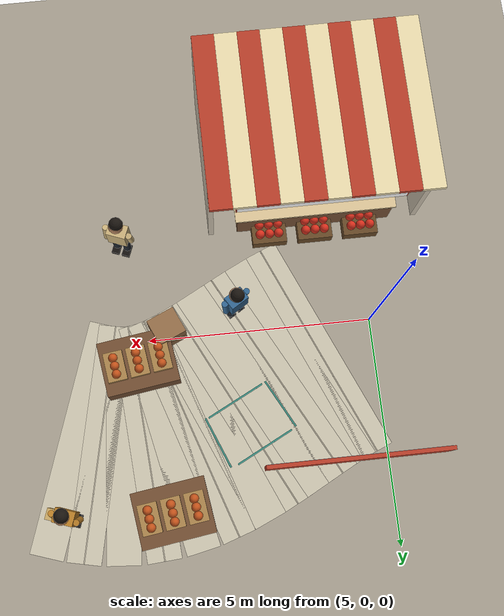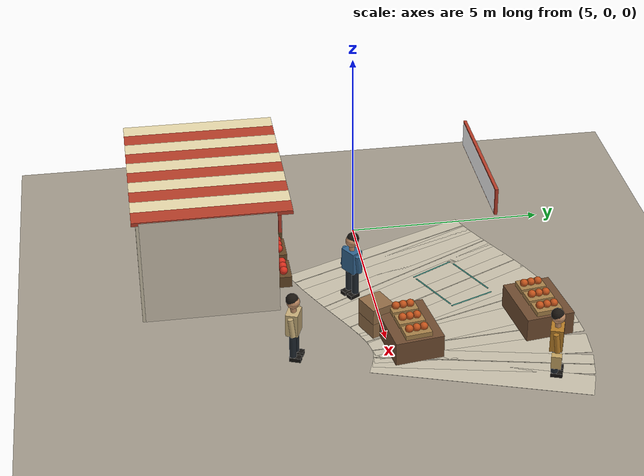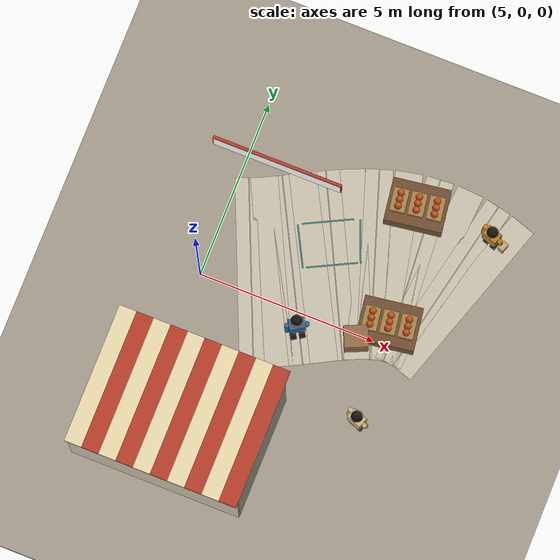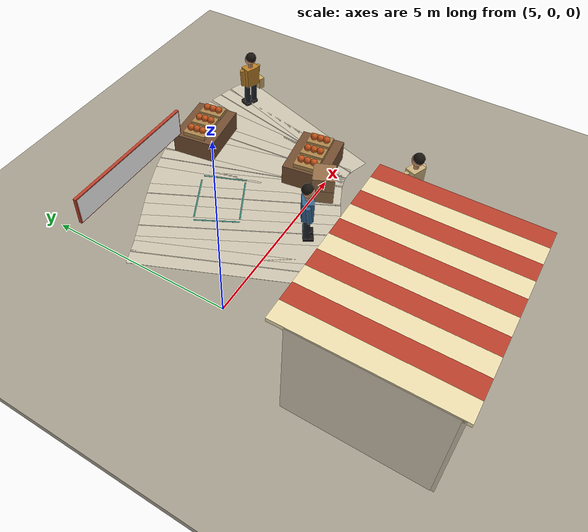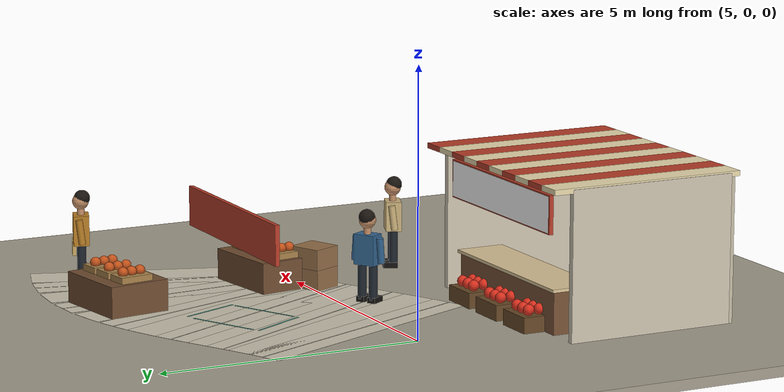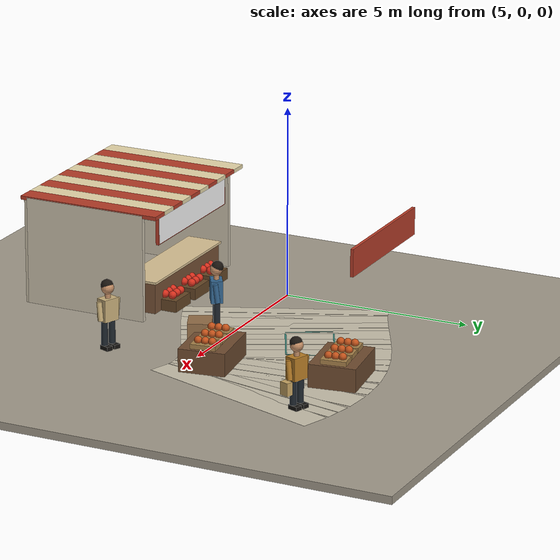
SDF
<sdf version="1.10">
 <world name="swan_market">
  <model name="ground">
   <static>true</static>
   <pose>15 0 -0.1 0 0 0</pose>
   <link name="body">
    <collision name="box_collision"><geometry><box><size>46 24 0.2</size></box></geometry></collision>
    <visual name="box_visual">
     <geometry><box><size>46 24 0.2</size></box></geometry>
     <material><ambient>0.64 0.61 0.55 1</ambient><diffuse>0.64 0.61 0.55 1</diffuse></material>
    </visual>
   </link>
  </model>
  <model name="market_paving_16">
   <static>true</static>
   <pose>6.25 0.54833 0.002 0 0 0.40225</pose>
   <link name="body">
    <visual name="box_visual">
     <geometry><box><size>0.75 5.2 0.004</size></box></geometry>
     <material><ambient>0.79 0.76 0.68 1</ambient><diffuse>0.79 0.76 0.68 1</diffuse></material>
    </visual>
   </link>
  </model>
  <model name="paving_joint_16">
   <static>true</static>
   <pose>6.25 0.54833 0.0045 0 0 0.40225</pose>
   <link name="body">
    <visual name="box_visual">
     <geometry><box><size>0.025 5.2 0.001</size></box></geometry>
     <material><ambient>0.67 0.64 0.57 1</ambient><diffuse>0.67 0.64 0.57 1</diffuse></material>
    </visual>
   </link>
  </model>
  <model name="market_paving_17">
   <static>true</static>
   <pose>6.75 0.77782 0.002 0 0 0.45458</pose>
   <link name="body">
    <visual name="box_visual">
     <geometry><box><size>0.75 5.2 0.004</size></box></geometry>
     <material><ambient>0.79 0.76 0.68 1</ambient><diffuse>0.79 0.76 0.68 1</diffuse></material>
    </visual>
   </link>
  </model>
  <model name="market_paving_18">
   <static>true</static>
   <pose>7.25 1.0326 0.002 0 0 0.48375</pose>
   <link name="body">
    <visual name="box_visual">
     <geometry><box><size>0.75 5.2 0.004</size></box></geometry>
     <material><ambient>0.79 0.76 0.68 1</ambient><diffuse>0.79 0.76 0.68 1</diffuse></material>
    </visual>
   </link>
  </model>
  <model name="paving_joint_18">
   <static>true</static>
   <pose>7.25 1.0326 0.0045 0 0 0.48375</pose>
   <link name="body">
    <visual name="box_visual">
     <geometry><box><size>0.025 5.2 0.001</size></box></geometry>
     <material><ambient>0.67 0.64 0.57 1</ambient><diffuse>0.67 0.64 0.57 1</diffuse></material>
    </visual>
   </link>
  </model>
  <model name="market_paving_19">
   <static>true</static>
   <pose>7.75 1.2978 0.002 0 0 0.48699</pose>
   <link name="body">
    <visual name="box_visual">
     <geometry><box><size>0.75 5.2 0.004</size></box></geometry>
     <material><ambient>0.79 0.76 0.68 1</ambient><diffuse>0.79 0.76 0.68 1</diffuse></material>
    </visual>
   </link>
  </model>
  <model name="market_paving_20">
   <static>true</static>
   <pose>8.25 1.5562 0.002 0 0 0.46221</pose>
   <link name="body">
    <visual name="box_visual">
     <geometry><box><size>0.75 5.2 0.004</size></box></geometry>
     <material><ambient>0.79 0.76 0.68 1</ambient><diffuse>0.79 0.76 0.68 1</diffuse></material>
    </visual>
   </link>
  </model>
  <model name="paving_joint_20">
   <static>true</static>
   <pose>8.25 1.5562 0.0045 0 0 0.46221</pose>
   <link name="body">
    <visual name="box_visual">
     <geometry><box><size>0.025 5.2 0.001</size></box></geometry>
     <material><ambient>0.67 0.64 0.57 1</ambient><diffuse>0.67 0.64 0.57 1</diffuse></material>
    </visual>
   </link>
  </model>
  <model name="market_paving_21">
   <static>true</static>
   <pose>8.75 1.7901 0.002 0 0 0.40758</pose>
   <link name="body">
    <visual name="box_visual">
     <geometry><box><size>0.75 5.2 0.004</size></box></geometry>
     <material><ambient>0.79 0.76 0.68 1</ambient><diffuse>0.79 0.76 0.68 1</diffuse></material>
    </visual>
   </link>
  </model>
  <model name="market_paving_22">
   <static>true</static>
   <pose>9.25 1.9827 0.002 0 0 0.32217</pose>
   <link name="body">
    <visual name="box_visual">
     <geometry><box><size>0.75 5.2 0.004</size></box></geometry>
     <material><ambient>0.79 0.76 0.68 1</ambient><diffuse>0.79 0.76 0.68 1</diffuse></material>
    </visual>
   </link>
  </model>
  <model name="paving_joint_22">
   <static>true</static>
   <pose>9.25 1.9827 0.0045 0 0 0.32217</pose>
   <link name="body">
    <visual name="box_visual">
     <geometry><box><size>0.025 5.2 0.001</size></box></geometry>
     <material><ambient>0.67 0.64 0.57 1</ambient><diffuse>0.67 0.64 0.57 1</diffuse></material>
    </visual>
   </link>
  </model>
  <model name="market_paving_23">
   <static>true</static>
   <pose>9.75 2.1197 0.002 0 0 0.2079</pose>
   <link name="body">
    <visual name="box_visual">
     <geometry><box><size>0.75 5.2 0.004</size></box></geometry>
     <material><ambient>0.79 0.76 0.68 1</ambient><diffuse>0.79 0.76 0.68 1</diffuse></material>
    </visual>
   </link>
  </model>
  <model name="market_paving_24">
   <static>true</static>
   <pose>10.25 2.191 0.002 0 0 0.072021</pose>
   <link name="body">
    <visual name="box_visual">
     <geometry><box><size>0.75 5.2 0.004</size></box></geometry>
     <material><ambient>0.79 0.76 0.68 1</ambient><diffuse>0.79 0.76 0.68 1</diffuse></material>
    </visual>
   </link>
  </model>
  <model name="paving_joint_24">
   <static>true</static>
   <pose>10.25 2.191 0.0045 0 0 0.072021</pose>
   <link name="body">
    <visual name="box_visual">
     <geometry><box><size>0.025 5.2 0.001</size></box></geometry>
     <material><ambient>0.67 0.64 0.57 1</ambient><diffuse>0.67 0.64 0.57 1</diffuse></material>
    </visual>
   </link>
  </model>
  <model name="market_paving_25">
   <static>true</static>
   <pose>10.75 2.191 0.002 0 0 -0.072021</pose>
   <link name="body">
    <visual name="box_visual">
     <geometry><box><size>0.75 5.2 0.004</size></box></geometry>
     <material><ambient>0.79 0.76 0.68 1</ambient><diffuse>0.79 0.76 0.68 1</diffuse></material>
    </visual>
   </link>
  </model>
  <model name="market_paving_26">
   <static>true</static>
   <pose>11.25 2.1197 0.002 0 0 -0.2079</pose>
   <link name="body">
    <visual name="box_visual">
     <geometry><box><size>0.75 5.2 0.004</size></box></geometry>
     <material><ambient>0.79 0.76 0.68 1</ambient><diffuse>0.79 0.76 0.68 1</diffuse></material>
    </visual>
   </link>
  </model>
  <model name="paving_joint_26">
   <static>true</static>
   <pose>11.25 2.1197 0.0045 0 0 -0.2079</pose>
   <link name="body">
    <visual name="box_visual">
     <geometry><box><size>0.025 5.2 0.001</size></box></geometry>
     <material><ambient>0.67 0.64 0.57 1</ambient><diffuse>0.67 0.64 0.57 1</diffuse></material>
    </visual>
   </link>
  </model>
  <model name="market_paving_27">
   <static>true</static>
   <pose>11.75 1.9827 0.002 0 0 -0.32217</pose>
   <link name="body">
    <visual name="box_visual">
     <geometry><box><size>0.75 5.2 0.004</size></box></geometry>
     <material><ambient>0.79 0.76 0.68 1</ambient><diffuse>0.79 0.76 0.68 1</diffuse></material>
    </visual>
   </link>
  </model>
  <model name="signboard_0">
   <static>true</static>
   <pose>6 3.1368 2.24 0 0 0</pose>
   <link name="body">
    <collision name="box_collision"><geometry><box><size>3.65 0.08 0.72</size></box></geometry></collision>
    <visual name="box_visual">
     <geometry><box><size>3.65 0.08 0.72</size></box></geometry>
     <material><ambient>0.72 0.24 0.16 1</ambient><diffuse>0.72 0.24 0.16 1</diffuse></material>
    </visual>
   </link>
  </model>
  <model name="sign_shop_0">
   <static>true</static>
   <pose>6 3.0888 2.24 0 0 0</pose>
   <link name="body">
    <visual name="lettering">
     <geometry>
      <mesh><uri>model://swan_market_assets/meshes/shop_0.dae</uri><scale>3.6 1 0.675</scale></mesh>
     </geometry>
     <material>
      <ambient>1 1 1 1</ambient>
      <diffuse>1 1 1 1</diffuse>
      <emissive>0 0 0 1</emissive>
      <pbr>
       <metal>
        <albedo_map>model://swan_market_assets/materials/textures/shop_0.png</albedo_map>
        <metalness>0</metalness>
        <roughness>1</roughness>
       </metal>
      </pbr>
     </material>
    </visual>
   </link>
  </model>
  <model name="stall_04">
   <static>true</static>
   <pose>6 -4.0032 0 0 0 0</pose>
   <link name="body">
    <collision name="rear_collision">
     <pose>0 -1.65 1.4 0 0 0</pose>
     <geometry><box><size>4.8 0.15 2.8</size></box></geometry>
    </collision>
    <visual name="rear_visual">
     <pose>0 -1.65 1.4 0 0 0</pose>
     <geometry><box><size>4.8 0.15 2.8</size></box></geometry>
     <material><ambient>0.78 0.74 0.65 1</ambient><diffuse>0.78 0.74 0.65 1</diffuse></material>
    </visual>
    <collision name="side_-2.35_collision">
     <pose>-2.35 0 1.4 0 0 0</pose>
     <geometry><box><size>0.12 3.3 2.8</size></box></geometry>
    </collision>
    <visual name="side_-2.35_visual">
     <pose>-2.35 0 1.4 0 0 0</pose>
     <geometry><box><size>0.12 3.3 2.8</size></box></geometry>
     <material><ambient>0.81 0.77 0.69 1</ambient><diffuse>0.81 0.77 0.69 1</diffuse></material>
    </visual>
    <collision name="side_2.35_collision">
     <pose>2.35 0 1.4 0 0 0</pose>
     <geometry><box><size>0.12 3.3 2.8</size></box></geometry>
    </collision>
    <visual name="side_2.35_visual">
     <pose>2.35 0 1.4 0 0 0</pose>
     <geometry><box><size>0.12 3.3 2.8</size></box></geometry>
     <material><ambient>0.81 0.77 0.69 1</ambient><diffuse>0.81 0.77 0.69 1</diffuse></material>
    </visual>
    <collision name="counter_collision">
     <pose>0 1.22 0.4 0 0 0</pose>
     <geometry><box><size>3.5 0.85 0.8</size></box></geometry>
    </collision>
    <visual name="counter_visual">
     <pose>0 1.22 0.4 0 0 0</pose>
     <geometry><box><size>3.5 0.85 0.8</size></box></geometry>
     <material><ambient>0.47 0.32 0.21 1</ambient><diffuse>0.47 0.32 0.21 1</diffuse></material>
    </visual>
    <collision name="counter_top_collision">
     <pose>0 1.22 0.83 0 0 0</pose>
     <geometry><box><size>3.6 0.95 0.06</size></box></geometry>
    </collision>
    <visual name="counter_top_visual">
     <pose>0 1.22 0.83 0 0 0</pose>
     <geometry><box><size>3.6 0.95 0.06</size></box></geometry>
     <material><ambient>0.86 0.77 0.59 1</ambient><diffuse>0.86 0.77 0.59 1</diffuse></material>
    </visual>
    <collision name="awning_0_collision">
     <pose>-2.16 0.1 2.78 0 0 0</pose>
     <geometry><box><size>0.48 3.85 0.1</size></box></geometry>
    </collision>
    <visual name="awning_0_visual">
     <pose>-2.16 0.1 2.78 0 0 0</pose>
     <geometry><box><size>0.48 3.85 0.1</size></box></geometry>
     <material><ambient>0.92 0.86 0.68 1</ambient><diffuse>0.92 0.86 0.68 1</diffuse></material>
    </visual>
    <collision name="awning_1_collision">
     <pose>-1.68 0.1 2.78 0 0 0</pose>
     <geometry><box><size>0.48 3.85 0.1</size></box></geometry>
    </collision>
    <visual name="awning_1_visual">
     <pose>-1.68 0.1 2.78 0 0 0</pose>
     <geometry><box><size>0.48 3.85 0.1</size></box></geometry>
     <material><ambient>0.72 0.24 0.16 1</ambient><diffuse>0.72 0.24 0.16 1</diffuse></material>
    </visual>
    <collision name="awning_2_collision">
     <pose>-1.2 0.1 2.78 0 0 0</pose>
     <geometry><box><size>0.48 3.85 0.1</size></box></geometry>
    </collision>
    <visual name="awning_2_visual">
     <pose>-1.2 0.1 2.78 0 0 0</pose>
     <geometry><box><size>0.48 3.85 0.1</size></box></geometry>
     <material><ambient>0.92 0.86 0.68 1</ambient><diffuse>0.92 0.86 0.68 1</diffuse></material>
    </visual>
    <collision name="awning_3_collision">
     <pose>-0.72 0.1 2.78 0 0 0</pose>
     <geometry><box><size>0.48 3.85 0.1</size></box></geometry>
    </collision>
    <visual name="awning_3_visual">
     <pose>-0.72 0.1 2.78 0 0 0</pose>
     <geometry><box><size>0.48 3.85 0.1</size></box></geometry>
     <material><ambient>0.72 0.24 0.16 1</ambient><diffuse>0.72 0.24 0.16 1</diffuse></material>
    </visual>
    <collision name="awning_4_collision">
     <pose>-0.24 0.1 2.78 0 0 0</pose>
     <geometry><box><size>0.48 3.85 0.1</size></box></geometry>
    </collision>
    <visual name="awning_4_visual">
     <pose>-0.24 0.1 2.78 0 0 0</pose>
     <geometry><box><size>0.48 3.85 0.1</size></box></geometry>
     <material><ambient>0.92 0.86 0.68 1</ambient><diffuse>0.92 0.86 0.68 1</diffuse></material>
    </visual>
    <collision name="awning_5_collision">
     <pose>0.24 0.1 2.78 0 0 0</pose>
     <geometry><box><size>0.48 3.85 0.1</size></box></geometry>
    </collision>
    <visual name="awning_5_visual">
     <pose>0.24 0.1 2.78 0 0 0</pose>
     <geometry><box><size>0.48 3.85 0.1</size></box></geometry>
     <material><ambient>0.72 0.24 0.16 1</ambient><diffuse>0.72 0.24 0.16 1</diffuse></material>
    </visual>
    <collision name="awning_6_collision">
     <pose>0.72 0.1 2.78 0 0 0</pose>
     <geometry><box><size>0.48 3.85 0.1</size></box></geometry>
    </collision>
    <visual name="awning_6_visual">
     <pose>0.72 0.1 2.78 0 0 0</pose>
     <geometry><box><size>0.48 3.85 0.1</size></box></geometry>
     <material><ambient>0.92 0.86 0.68 1</ambient><diffuse>0.92 0.86 0.68 1</diffuse></material>
    </visual>
    <collision name="awning_7_collision">
     <pose>1.2 0.1 2.78 0 0 0</pose>
     <geometry><box><size>0.48 3.85 0.1</size></box></geometry>
    </collision>
    <visual name="awning_7_visual">
     <pose>1.2 0.1 2.78 0 0 0</pose>
     <geometry><box><size>0.48 3.85 0.1</size></box></geometry>
     <material><ambient>0.72 0.24 0.16 1</ambient><diffuse>0.72 0.24 0.16 1</diffuse></material>
    </visual>
    <collision name="awning_8_collision">
     <pose>1.68 0.1 2.78 0 0 0</pose>
     <geometry><box><size>0.48 3.85 0.1</size></box></geometry>
    </collision>
    <visual name="awning_8_visual">
     <pose>1.68 0.1 2.78 0 0 0</pose>
     <geometry><box><size>0.48 3.85 0.1</size></box></geometry>
     <material><ambient>0.92 0.86 0.68 1</ambient><diffuse>0.92 0.86 0.68 1</diffuse></material>
    </visual>
    <collision name="awning_9_collision">
     <pose>2.16 0.1 2.78 0 0 0</pose>
     <geometry><box><size>0.48 3.85 0.1</size></box></geometry>
    </collision>
    <visual name="awning_9_visual">
     <pose>2.16 0.1 2.78 0 0 0</pose>
     <geometry><box><size>0.48 3.85 0.1</size></box></geometry>
     <material><ambient>0.72 0.24 0.16 1</ambient><diffuse>0.72 0.24 0.16 1</diffuse></material>
    </visual>
    <collision name="crate_-1_collision">
     <pose>-1.04 1.77 0.15 0 0 0</pose>
     <geometry><box><size>0.78 0.6 0.3</size></box></geometry>
    </collision>
    <visual name="crate_-1_visual">
     <pose>-1.04 1.77 0.15 0 0 0</pose>
     <geometry><box><size>0.78 0.6 0.3</size></box></geometry>
     <material><ambient>0.4 0.28 0.15 1</ambient><diffuse>0.4 0.28 0.15 1</diffuse></material>
    </visual>
    <visual name="produce_-1_0_visual">
     <pose>-1.25 1.66 0.39 0 0 0</pose>
     <geometry><sphere><radius>0.105</radius></sphere></geometry>
     <material><ambient>0.84 0.18 0.11 1</ambient><diffuse>0.84 0.18 0.11 1</diffuse></material>
    </visual>
    <visual name="produce_-1_1_visual">
     <pose>-1.04 1.66 0.39 0 0 0</pose>
     <geometry><sphere><radius>0.105</radius></sphere></geometry>
     <material><ambient>0.84 0.18 0.11 1</ambient><diffuse>0.84 0.18 0.11 1</diffuse></material>
    </visual>
    <visual name="produce_-1_2_visual">
     <pose>-0.83 1.66 0.39 0 0 0</pose>
     <geometry><sphere><radius>0.105</radius></sphere></geometry>
     <material><ambient>0.84 0.18 0.11 1</ambient><diffuse>0.84 0.18 0.11 1</diffuse></material>
    </visual>
    <visual name="produce_-1_3_visual">
     <pose>-1.25 1.88 0.39 0 0 0</pose>
     <geometry><sphere><radius>0.105</radius></sphere></geometry>
     <material><ambient>0.84 0.18 0.11 1</ambient><diffuse>0.84 0.18 0.11 1</diffuse></material>
    </visual>
    <visual name="produce_-1_4_visual">
     <pose>-1.04 1.88 0.39 0 0 0</pose>
     <geometry><sphere><radius>0.105</radius></sphere></geometry>
     <material><ambient>0.84 0.18 0.11 1</ambient><diffuse>0.84 0.18 0.11 1</diffuse></material>
    </visual>
    <visual name="produce_-1_5_visual">
     <pose>-0.83 1.88 0.39 0 0 0</pose>
     <geometry><sphere><radius>0.105</radius></sphere></geometry>
     <material><ambient>0.84 0.18 0.11 1</ambient><diffuse>0.84 0.18 0.11 1</diffuse></material>
    </visual>
    <collision name="crate_0_collision">
     <pose>0 1.77 0.15 0 0 0</pose>
     <geometry><box><size>0.78 0.6 0.3</size></box></geometry>
    </collision>
    <visual name="crate_0_visual">
     <pose>0 1.77 0.15 0 0 0</pose>
     <geometry><box><size>0.78 0.6 0.3</size></box></geometry>
     <material><ambient>0.4 0.28 0.15 1</ambient><diffuse>0.4 0.28 0.15 1</diffuse></material>
    </visual>
    <visual name="produce_0_0_visual">
     <pose>-0.21 1.66 0.39 0 0 0</pose>
     <geometry><sphere><radius>0.105</radius></sphere></geometry>
     <material><ambient>0.84 0.18 0.11 1</ambient><diffuse>0.84 0.18 0.11 1</diffuse></material>
    </visual>
    <visual name="produce_0_1_visual">
     <pose>0 1.66 0.39 0 0 0</pose>
     <geometry><sphere><radius>0.105</radius></sphere></geometry>
     <material><ambient>0.84 0.18 0.11 1</ambient><diffuse>0.84 0.18 0.11 1</diffuse></material>
    </visual>
    <visual name="produce_0_2_visual">
     <pose>0.21 1.66 0.39 0 0 0</pose>
     <geometry><sphere><radius>0.105</radius></sphere></geometry>
     <material><ambient>0.84 0.18 0.11 1</ambient><diffuse>0.84 0.18 0.11 1</diffuse></material>
    </visual>
    <visual name="produce_0_3_visual">
     <pose>-0.21 1.88 0.39 0 0 0</pose>
     <geometry><sphere><radius>0.105</radius></sphere></geometry>
     <material><ambient>0.84 0.18 0.11 1</ambient><diffuse>0.84 0.18 0.11 1</diffuse></material>
    </visual>
    <visual name="produce_0_4_visual">
     <pose>0 1.88 0.39 0 0 0</pose>
     <geometry><sphere><radius>0.105</radius></sphere></geometry>
     <material><ambient>0.84 0.18 0.11 1</ambient><diffuse>0.84 0.18 0.11 1</diffuse></material>
    </visual>
    <visual name="produce_0_5_visual">
     <pose>0.21 1.88 0.39 0 0 0</pose>
     <geometry><sphere><radius>0.105</radius></sphere></geometry>
     <material><ambient>0.84 0.18 0.11 1</ambient><diffuse>0.84 0.18 0.11 1</diffuse></material>
    </visual>
    <collision name="crate_1_collision">
     <pose>1.04 1.77 0.15 0 0 0</pose>
     <geometry><box><size>0.78 0.6 0.3</size></box></geometry>
    </collision>
    <visual name="crate_1_visual">
     <pose>1.04 1.77 0.15 0 0 0</pose>
     <geometry><box><size>0.78 0.6 0.3</size></box></geometry>
     <material><ambient>0.4 0.28 0.15 1</ambient><diffuse>0.4 0.28 0.15 1</diffuse></material>
    </visual>
    <visual name="produce_1_0_visual">
     <pose>0.83 1.66 0.39 0 0 0</pose>
     <geometry><sphere><radius>0.105</radius></sphere></geometry>
     <material><ambient>0.84 0.18 0.11 1</ambient><diffuse>0.84 0.18 0.11 1</diffuse></material>
    </visual>
    <visual name="produce_1_1_visual">
     <pose>1.04 1.66 0.39 0 0 0</pose>
     <geometry><sphere><radius>0.105</radius></sphere></geometry>
     <material><ambient>0.84 0.18 0.11 1</ambient><diffuse>0.84 0.18 0.11 1</diffuse></material>
    </visual>
    <visual name="produce_1_2_visual">
     <pose>1.25 1.66 0.39 0 0 0</pose>
     <geometry><sphere><radius>0.105</radius></sphere></geometry>
     <material><ambient>0.84 0.18 0.11 1</ambient><diffuse>0.84 0.18 0.11 1</diffuse></material>
    </visual>
    <visual name="produce_1_3_visual">
     <pose>0.83 1.88 0.39 0 0 0</pose>
     <geometry><sphere><radius>0.105</radius></sphere></geometry>
     <material><ambient>0.84 0.18 0.11 1</ambient><diffuse>0.84 0.18 0.11 1</diffuse></material>
    </visual>
    <visual name="produce_1_4_visual">
     <pose>1.04 1.88 0.39 0 0 0</pose>
     <geometry><sphere><radius>0.105</radius></sphere></geometry>
     <material><ambient>0.84 0.18 0.11 1</ambient><diffuse>0.84 0.18 0.11 1</diffuse></material>
    </visual>
    <visual name="produce_1_5_visual">
     <pose>1.25 1.88 0.39 0 0 0</pose>
     <geometry><sphere><radius>0.105</radius></sphere></geometry>
     <material><ambient>0.84 0.18 0.11 1</ambient><diffuse>0.84 0.18 0.11 1</diffuse></material>
    </visual>
   </link>
  </model>
  <model name="signboard_4">
   <static>true</static>
   <pose>6 -2.2432 2.24 0 0 0</pose>
   <link name="body">
    <collision name="box_collision"><geometry><box><size>3.65 0.08 0.72</size></box></geometry></collision>
    <visual name="box_visual">
     <geometry><box><size>3.65 0.08 0.72</size></box></geometry>
     <material><ambient>0.72 0.24 0.16 1</ambient><diffuse>0.72 0.24 0.16 1</diffuse></material>
    </visual>
   </link>
  </model>
  <model name="sign_shop_4">
   <static>true</static>
   <pose>6 -2.1952 2.24 0 0 3.1416</pose>
   <link name="body">
    <visual name="lettering">
     <geometry>
      <mesh><uri>model://swan_market_assets/meshes/shop_4.dae</uri><scale>3.6 1 0.675</scale></mesh>
     </geometry>
     <material>
      <ambient>1 1 1 1</ambient>
      <diffuse>1 1 1 1</diffuse>
      <emissive>0 0 0 1</emissive>
      <pbr>
       <metal>
        <albedo_map>model://swan_market_assets/materials/textures/shop_4.png</albedo_map>
        <metalness>0</metalness>
        <roughness>1</roughness>
       </metal>
      </pbr>
     </material>
    </visual>
   </link>
  </model>
  <model name="vendor_1">
   <static>true</static>
   <pose>10.396 -2.2584 0 0 0 1.2021</pose>
   <link name="body">
    <collision name="leg_-1_collision">
     <pose>0 -0.12 0.4 0 0 0</pose>
     <geometry><cylinder><radius>0.085</radius><length>0.68</length></cylinder></geometry>
    </collision>
    <visual name="leg_-1_visual">
     <pose>0 -0.12 0.4 0 0 0</pose>
     <geometry><cylinder><radius>0.085</radius><length>0.68</length></cylinder></geometry>
     <material><ambient>0.12 0.15 0.18 1</ambient><diffuse>0.12 0.15 0.18 1</diffuse></material>
    </visual>
    <collision name="shoe_-1_collision">
     <pose>0.06 -0.12 0.055 0 0 0</pose>
     <geometry><box><size>0.28 0.17 0.11</size></box></geometry>
    </collision>
    <visual name="shoe_-1_visual">
     <pose>0.06 -0.12 0.055 0 0 0</pose>
     <geometry><box><size>0.28 0.17 0.11</size></box></geometry>
     <material><ambient>0.08 0.07 0.06 1</ambient><diffuse>0.08 0.07 0.06 1</diffuse></material>
    </visual>
    <collision name="arm_-1_collision">
     <pose>0.02 -0.27 1.02 0 -0.12 0</pose>
     <geometry><cylinder><radius>0.068</radius><length>0.48</length></cylinder></geometry>
    </collision>
    <visual name="arm_-1_visual">
     <pose>0.02 -0.27 1.02 0 -0.12 0</pose>
     <geometry><cylinder><radius>0.068</radius><length>0.48</length></cylinder></geometry>
     <material><ambient>0.79 0.69 0.48 1</ambient><diffuse>0.79 0.69 0.48 1</diffuse></material>
    </visual>
    <collision name="leg_1_collision">
     <pose>0 0.12 0.4 0 0 0</pose>
     <geometry><cylinder><radius>0.085</radius><length>0.68</length></cylinder></geometry>
    </collision>
    <visual name="leg_1_visual">
     <pose>0 0.12 0.4 0 0 0</pose>
     <geometry><cylinder><radius>0.085</radius><length>0.68</length></cylinder></geometry>
     <material><ambient>0.12 0.15 0.18 1</ambient><diffuse>0.12 0.15 0.18 1</diffuse></material>
    </visual>
    <collision name="shoe_1_collision">
     <pose>0.06 0.12 0.055 0 0 0</pose>
     <geometry><box><size>0.28 0.17 0.11</size></box></geometry>
    </collision>
    <visual name="shoe_1_visual">
     <pose>0.06 0.12 0.055 0 0 0</pose>
     <geometry><box><size>0.28 0.17 0.11</size></box></geometry>
     <material><ambient>0.08 0.07 0.06 1</ambient><diffuse>0.08 0.07 0.06 1</diffuse></material>
    </visual>
    <collision name="arm_1_collision">
     <pose>0.02 0.27 1.02 0 0.12 0</pose>
     <geometry><cylinder><radius>0.068</radius><length>0.48</length></cylinder></geometry>
    </collision>
    <visual name="arm_1_visual">
     <pose>0.02 0.27 1.02 0 0.12 0</pose>
     <geometry><cylinder><radius>0.068</radius><length>0.48</length></cylinder></geometry>
     <material><ambient>0.79 0.69 0.48 1</ambient><diffuse>0.79 0.69 0.48 1</diffuse></material>
    </visual>
    <collision name="torso_collision">
     <pose>0 0 1.02 0 0 0</pose>
     <geometry><box><size>0.3 0.43 0.58</size></box></geometry>
    </collision>
    <visual name="torso_visual">
     <pose>0 0 1.02 0 0 0</pose>
     <geometry><box><size>0.3 0.43 0.58</size></box></geometry>
     <material><ambient>0.79 0.69 0.48 1</ambient><diffuse>0.79 0.69 0.48 1</diffuse></material>
    </visual>
    <visual name="neck_visual">
     <pose>0 0 1.37 0 0 0</pose>
     <geometry><cylinder><radius>0.07</radius><length>0.13</length></cylinder></geometry>
     <material><ambient>0.77 0.56 0.4 1</ambient><diffuse>0.77 0.56 0.4 1</diffuse></material>
    </visual>
    <collision name="head_collision">
     <pose>0 0 1.57 0 0 0</pose>
     <geometry><sphere><radius>0.16</radius></sphere></geometry>
    </collision>
    <visual name="head_visual">
     <pose>0 0 1.57 0 0 0</pose>
     <geometry><sphere><radius>0.16</radius></sphere></geometry>
     <material><ambient>0.77 0.56 0.4 1</ambient><diffuse>0.77 0.56 0.4 1</diffuse></material>
    </visual>
    <visual name="hair_visual">
     <pose>-0.025 0 1.63 0 0 0</pose>
     <geometry><sphere><radius>0.155</radius></sphere></geometry>
     <material><ambient>0.1 0.08 0.06 1</ambient><diffuse>0.1 0.08 0.06 1</diffuse></material>
    </visual>
   </link>
  </model>
  <model name="aisle_display_-1">
   <static>true</static>
   <pose>10.233 0.53064 0.3 0 0 0.14195</pose>
   <link name="body">
    <collision name="box_collision"><geometry><box><size>1.6 1.2 0.6</size></box></geometry></collision>
    <visual name="box_visual">
     <geometry><box><size>1.6 1.2 0.6</size></box></geometry>
     <material><ambient>0.44 0.3 0.19 1</ambient><diffuse>0.44 0.3 0.19 1</diffuse></material>
    </visual>
    <collision name="basket_-0.5_collision">
     <pose>-0.5 0 0.36 0 0 0</pose>
     <geometry><box><size>0.42 0.65 0.12</size></box></geometry>
    </collision>
    <visual name="basket_-0.5_visual">
     <pose>-0.5 0 0.36 0 0 0</pose>
     <geometry><box><size>0.42 0.65 0.12</size></box></geometry>
     <material><ambient>0.66 0.51 0.29 1</ambient><diffuse>0.66 0.51 0.29 1</diffuse></material>
    </visual>
    <visual name="goods_-0.5_-1_visual">
     <pose>-0.5 -0.18 0.47 0 0 0</pose>
     <geometry><sphere><radius>0.1</radius></sphere></geometry>
     <material><ambient>0.76 0.32 0.1 1</ambient><diffuse>0.76 0.32 0.1 1</diffuse></material>
    </visual>
    <visual name="goods_-0.5_0_visual">
     <pose>-0.5 0 0.47 0 0 0</pose>
     <geometry><sphere><radius>0.1</radius></sphere></geometry>
     <material><ambient>0.76 0.32 0.1 1</ambient><diffuse>0.76 0.32 0.1 1</diffuse></material>
    </visual>
    <visual name="goods_-0.5_1_visual">
     <pose>-0.5 0.18 0.47 0 0 0</pose>
     <geometry><sphere><radius>0.1</radius></sphere></geometry>
     <material><ambient>0.76 0.32 0.1 1</ambient><diffuse>0.76 0.32 0.1 1</diffuse></material>
    </visual>
    <collision name="basket_0_collision">
     <pose>0 0 0.36 0 0 0</pose>
     <geometry><box><size>0.42 0.65 0.12</size></box></geometry>
    </collision>
    <visual name="basket_0_visual">
     <pose>0 0 0.36 0 0 0</pose>
     <geometry><box><size>0.42 0.65 0.12</size></box></geometry>
     <material><ambient>0.66 0.51 0.29 1</ambient><diffuse>0.66 0.51 0.29 1</diffuse></material>
    </visual>
    <visual name="goods_0_-1_visual">
     <pose>0 -0.18 0.47 0 0 0</pose>
     <geometry><sphere><radius>0.1</radius></sphere></geometry>
     <material><ambient>0.76 0.32 0.1 1</ambient><diffuse>0.76 0.32 0.1 1</diffuse></material>
    </visual>
    <visual name="goods_0_0_visual">
     <pose>0 0 0.47 0 0 0</pose>
     <geometry><sphere><radius>0.1</radius></sphere></geometry>
     <material><ambient>0.76 0.32 0.1 1</ambient><diffuse>0.76 0.32 0.1 1</diffuse></material>
    </visual>
    <visual name="goods_0_1_visual">
     <pose>0 0.18 0.47 0 0 0</pose>
     <geometry><sphere><radius>0.1</radius></sphere></geometry>
     <material><ambient>0.76 0.32 0.1 1</ambient><diffuse>0.76 0.32 0.1 1</diffuse></material>
    </visual>
    <collision name="basket_0.5_collision">
     <pose>0.5 0 0.36 0 0 0</pose>
     <geometry><box><size>0.42 0.65 0.12</size></box></geometry>
    </collision>
    <visual name="basket_0.5_visual">
     <pose>0.5 0 0.36 0 0 0</pose>
     <geometry><box><size>0.42 0.65 0.12</size></box></geometry>
     <material><ambient>0.66 0.51 0.29 1</ambient><diffuse>0.66 0.51 0.29 1</diffuse></material>
    </visual>
    <visual name="goods_0.5_-1_visual">
     <pose>0.5 -0.18 0.47 0 0 0</pose>
     <geometry><sphere><radius>0.1</radius></sphere></geometry>
     <material><ambient>0.76 0.32 0.1 1</ambient><diffuse>0.76 0.32 0.1 1</diffuse></material>
    </visual>
    <visual name="goods_0.5_0_visual">
     <pose>0.5 0 0.47 0 0 0</pose>
     <geometry><sphere><radius>0.1</radius></sphere></geometry>
     <material><ambient>0.76 0.32 0.1 1</ambient><diffuse>0.76 0.32 0.1 1</diffuse></material>
    </visual>
    <visual name="goods_0.5_1_visual">
     <pose>0.5 0.18 0.47 0 0 0</pose>
     <geometry><sphere><radius>0.1</radius></sphere></geometry>
     <material><ambient>0.76 0.32 0.1 1</ambient><diffuse>0.76 0.32 0.1 1</diffuse></material>
    </visual>
   </link>
  </model>
  <model name="aisle_display_1">
   <static>true</static>
   <pose>9.7666 3.7974 0.3 0 0 0.14195</pose>
   <link name="body">
    <collision name="box_collision"><geometry><box><size>1.6 1.2 0.6</size></box></geometry></collision>
    <visual name="box_visual">
     <geometry><box><size>1.6 1.2 0.6</size></box></geometry>
     <material><ambient>0.44 0.3 0.19 1</ambient><diffuse>0.44 0.3 0.19 1</diffuse></material>
    </visual>
    <collision name="basket_-0.5_collision">
     <pose>-0.5 0 0.36 0 0 0</pose>
     <geometry><box><size>0.42 0.65 0.12</size></box></geometry>
    </collision>
    <visual name="basket_-0.5_visual">
     <pose>-0.5 0 0.36 0 0 0</pose>
     <geometry><box><size>0.42 0.65 0.12</size></box></geometry>
     <material><ambient>0.66 0.51 0.29 1</ambient><diffuse>0.66 0.51 0.29 1</diffuse></material>
    </visual>
    <visual name="goods_-0.5_-1_visual">
     <pose>-0.5 -0.18 0.47 0 0 0</pose>
     <geometry><sphere><radius>0.1</radius></sphere></geometry>
     <material><ambient>0.76 0.32 0.1 1</ambient><diffuse>0.76 0.32 0.1 1</diffuse></material>
    </visual>
    <visual name="goods_-0.5_0_visual">
     <pose>-0.5 0 0.47 0 0 0</pose>
     <geometry><sphere><radius>0.1</radius></sphere></geometry>
     <material><ambient>0.76 0.32 0.1 1</ambient><diffuse>0.76 0.32 0.1 1</diffuse></material>
    </visual>
    <visual name="goods_-0.5_1_visual">
     <pose>-0.5 0.18 0.47 0 0 0</pose>
     <geometry><sphere><radius>0.1</radius></sphere></geometry>
     <material><ambient>0.76 0.32 0.1 1</ambient><diffuse>0.76 0.32 0.1 1</diffuse></material>
    </visual>
    <collision name="basket_0_collision">
     <pose>0 0 0.36 0 0 0</pose>
     <geometry><box><size>0.42 0.65 0.12</size></box></geometry>
    </collision>
    <visual name="basket_0_visual">
     <pose>0 0 0.36 0 0 0</pose>
     <geometry><box><size>0.42 0.65 0.12</size></box></geometry>
     <material><ambient>0.66 0.51 0.29 1</ambient><diffuse>0.66 0.51 0.29 1</diffuse></material>
    </visual>
    <visual name="goods_0_-1_visual">
     <pose>0 -0.18 0.47 0 0 0</pose>
     <geometry><sphere><radius>0.1</radius></sphere></geometry>
     <material><ambient>0.76 0.32 0.1 1</ambient><diffuse>0.76 0.32 0.1 1</diffuse></material>
    </visual>
    <visual name="goods_0_0_visual">
     <pose>0 0 0.47 0 0 0</pose>
     <geometry><sphere><radius>0.1</radius></sphere></geometry>
     <material><ambient>0.76 0.32 0.1 1</ambient><diffuse>0.76 0.32 0.1 1</diffuse></material>
    </visual>
    <visual name="goods_0_1_visual">
     <pose>0 0.18 0.47 0 0 0</pose>
     <geometry><sphere><radius>0.1</radius></sphere></geometry>
     <material><ambient>0.76 0.32 0.1 1</ambient><diffuse>0.76 0.32 0.1 1</diffuse></material>
    </visual>
    <collision name="basket_0.5_collision">
     <pose>0.5 0 0.36 0 0 0</pose>
     <geometry><box><size>0.42 0.65 0.12</size></box></geometry>
    </collision>
    <visual name="basket_0.5_visual">
     <pose>0.5 0 0.36 0 0 0</pose>
     <geometry><box><size>0.42 0.65 0.12</size></box></geometry>
     <material><ambient>0.66 0.51 0.29 1</ambient><diffuse>0.66 0.51 0.29 1</diffuse></material>
    </visual>
    <visual name="goods_0.5_-1_visual">
     <pose>0.5 -0.18 0.47 0 0 0</pose>
     <geometry><sphere><radius>0.1</radius></sphere></geometry>
     <material><ambient>0.76 0.32 0.1 1</ambient><diffuse>0.76 0.32 0.1 1</diffuse></material>
    </visual>
    <visual name="goods_0.5_0_visual">
     <pose>0.5 0 0.47 0 0 0</pose>
     <geometry><sphere><radius>0.1</radius></sphere></geometry>
     <material><ambient>0.76 0.32 0.1 1</ambient><diffuse>0.76 0.32 0.1 1</diffuse></material>
    </visual>
    <visual name="goods_0.5_1_visual">
     <pose>0.5 0.18 0.47 0 0 0</pose>
     <geometry><sphere><radius>0.1</radius></sphere></geometry>
     <material><ambient>0.76 0.32 0.1 1</ambient><diffuse>0.76 0.32 0.1 1</diffuse></material>
    </visual>
   </link>
  </model>
  <model name="stock_stack_0_0">
   <static>true</static>
   <pose>9.5456 -0.15392 0.2 0 0 0.41442</pose>
   <link name="body">
    <collision name="box_collision"><geometry><box><size>0.65 0.6 0.4</size></box></geometry></collision>
    <visual name="box_visual">
     <geometry><box><size>0.65 0.6 0.4</size></box></geometry>
     <material><ambient>0.58 0.43 0.28 1</ambient><diffuse>0.58 0.43 0.28 1</diffuse></material>
    </visual>
   </link>
  </model>
  <model name="stock_stack_0_1">
   <static>true</static>
   <pose>9.5456 -0.15392 0.6 0 0 0.41442</pose>
   <link name="body">
    <collision name="box_collision"><geometry><box><size>0.65 0.6 0.4</size></box></geometry></collision>
    <visual name="box_visual">
     <geometry><box><size>0.65 0.6 0.4</size></box></geometry>
     <material><ambient>0.58 0.43 0.28 1</ambient><diffuse>0.58 0.43 0.28 1</diffuse></material>
    </visual>
   </link>
  </model>
  <model name="crowd_02">
   <static>true</static>
   <pose>7.988 -0.49997 0 0 0 -1.018</pose>
   <link name="body">
    <collision name="leg_-1_collision">
     <pose>0 -0.12 0.4 0 0 0</pose>
     <geometry><cylinder><radius>0.085</radius><length>0.68</length></cylinder></geometry>
    </collision>
    <visual name="leg_-1_visual">
     <pose>0 -0.12 0.4 0 0 0</pose>
     <geometry><cylinder><radius>0.085</radius><length>0.68</length></cylinder></geometry>
     <material><ambient>0.12 0.15 0.18 1</ambient><diffuse>0.12 0.15 0.18 1</diffuse></material>
    </visual>
    <collision name="shoe_-1_collision">
     <pose>0.06 -0.12 0.055 0 0 0</pose>
     <geometry><box><size>0.28 0.17 0.11</size></box></geometry>
    </collision>
    <visual name="shoe_-1_visual">
     <pose>0.06 -0.12 0.055 0 0 0</pose>
     <geometry><box><size>0.28 0.17 0.11</size></box></geometry>
     <material><ambient>0.08 0.07 0.06 1</ambient><diffuse>0.08 0.07 0.06 1</diffuse></material>
    </visual>
    <collision name="arm_-1_collision">
     <pose>0.02 -0.27 1.02 0 -0.12 0</pose>
     <geometry><cylinder><radius>0.068</radius><length>0.48</length></cylinder></geometry>
    </collision>
    <visual name="arm_-1_visual">
     <pose>0.02 -0.27 1.02 0 -0.12 0</pose>
     <geometry><cylinder><radius>0.068</radius><length>0.48</length></cylinder></geometry>
     <material><ambient>0.2 0.4 0.57 1</ambient><diffuse>0.2 0.4 0.57 1</diffuse></material>
    </visual>
    <collision name="leg_1_collision">
     <pose>0 0.12 0.4 0 0 0</pose>
     <geometry><cylinder><radius>0.085</radius><length>0.68</length></cylinder></geometry>
    </collision>
    <visual name="leg_1_visual">
     <pose>0 0.12 0.4 0 0 0</pose>
     <geometry><cylinder><radius>0.085</radius><length>0.68</length></cylinder></geometry>
     <material><ambient>0.12 0.15 0.18 1</ambient><diffuse>0.12 0.15 0.18 1</diffuse></material>
    </visual>
    <collision name="shoe_1_collision">
     <pose>0.06 0.12 0.055 0 0 0</pose>
     <geometry><box><size>0.28 0.17 0.11</size></box></geometry>
    </collision>
    <visual name="shoe_1_visual">
     <pose>0.06 0.12 0.055 0 0 0</pose>
     <geometry><box><size>0.28 0.17 0.11</size></box></geometry>
     <material><ambient>0.08 0.07 0.06 1</ambient><diffuse>0.08 0.07 0.06 1</diffuse></material>
    </visual>
    <collision name="arm_1_collision">
     <pose>0.02 0.27 1.02 0 0.12 0</pose>
     <geometry><cylinder><radius>0.068</radius><length>0.48</length></cylinder></geometry>
    </collision>
    <visual name="arm_1_visual">
     <pose>0.02 0.27 1.02 0 0.12 0</pose>
     <geometry><cylinder><radius>0.068</radius><length>0.48</length></cylinder></geometry>
     <material><ambient>0.2 0.4 0.57 1</ambient><diffuse>0.2 0.4 0.57 1</diffuse></material>
    </visual>
    <collision name="torso_collision">
     <pose>0 0 1.02 0 0 0</pose>
     <geometry><box><size>0.3 0.43 0.58</size></box></geometry>
    </collision>
    <visual name="torso_visual">
     <pose>0 0 1.02 0 0 0</pose>
     <geometry><box><size>0.3 0.43 0.58</size></box></geometry>
     <material><ambient>0.2 0.4 0.57 1</ambient><diffuse>0.2 0.4 0.57 1</diffuse></material>
    </visual>
    <visual name="neck_visual">
     <pose>0 0 1.37 0 0 0</pose>
     <geometry><cylinder><radius>0.07</radius><length>0.13</length></cylinder></geometry>
     <material><ambient>0.77 0.56 0.4 1</ambient><diffuse>0.77 0.56 0.4 1</diffuse></material>
    </visual>
    <collision name="head_collision">
     <pose>0 0 1.57 0 0 0</pose>
     <geometry><sphere><radius>0.16</radius></sphere></geometry>
    </collision>
    <visual name="head_visual">
     <pose>0 0 1.57 0 0 0</pose>
     <geometry><sphere><radius>0.16</radius></sphere></geometry>
     <material><ambient>0.77 0.56 0.4 1</ambient><diffuse>0.77 0.56 0.4 1</diffuse></material>
    </visual>
    <visual name="hair_visual">
     <pose>-0.025 0 1.63 0 0 0</pose>
     <geometry><sphere><radius>0.155</radius></sphere></geometry>
     <material><ambient>0.1 0.08 0.06 1</ambient><diffuse>0.1 0.08 0.06 1</diffuse></material>
    </visual>
   </link>
  </model>
  <model name="crowd_03">
   <static>true</static>
   <pose>11.937 3.6499 0 0 0 1.2317</pose>
   <link name="body">
    <collision name="leg_-1_collision">
     <pose>0 -0.12 0.4 0 0 0</pose>
     <geometry><cylinder><radius>0.085</radius><length>0.68</length></cylinder></geometry>
    </collision>
    <visual name="leg_-1_visual">
     <pose>0 -0.12 0.4 0 0 0</pose>
     <geometry><cylinder><radius>0.085</radius><length>0.68</length></cylinder></geometry>
     <material><ambient>0.12 0.15 0.18 1</ambient><diffuse>0.12 0.15 0.18 1</diffuse></material>
    </visual>
    <collision name="shoe_-1_collision">
     <pose>0.06 -0.12 0.055 0 0 0</pose>
     <geometry><box><size>0.28 0.17 0.11</size></box></geometry>
    </collision>
    <visual name="shoe_-1_visual">
     <pose>0.06 -0.12 0.055 0 0 0</pose>
     <geometry><box><size>0.28 0.17 0.11</size></box></geometry>
     <material><ambient>0.08 0.07 0.06 1</ambient><diffuse>0.08 0.07 0.06 1</diffuse></material>
    </visual>
    <collision name="arm_-1_collision">
     <pose>0.02 -0.27 1.02 0 -0.12 0</pose>
     <geometry><cylinder><radius>0.068</radius><length>0.48</length></cylinder></geometry>
    </collision>
    <visual name="arm_-1_visual">
     <pose>0.02 -0.27 1.02 0 -0.12 0</pose>
     <geometry><cylinder><radius>0.068</radius><length>0.48</length></cylinder></geometry>
     <material><ambient>0.72 0.49 0.15 1</ambient><diffuse>0.72 0.49 0.15 1</diffuse></material>
    </visual>
    <collision name="leg_1_collision">
     <pose>0 0.12 0.4 0 0 0</pose>
     <geometry><cylinder><radius>0.085</radius><length>0.68</length></cylinder></geometry>
    </collision>
    <visual name="leg_1_visual">
     <pose>0 0.12 0.4 0 0 0</pose>
     <geometry><cylinder><radius>0.085</radius><length>0.68</length></cylinder></geometry>
     <material><ambient>0.12 0.15 0.18 1</ambient><diffuse>0.12 0.15 0.18 1</diffuse></material>
    </visual>
    <collision name="shoe_1_collision">
     <pose>0.06 0.12 0.055 0 0 0</pose>
     <geometry><box><size>0.28 0.17 0.11</size></box></geometry>
    </collision>
    <visual name="shoe_1_visual">
     <pose>0.06 0.12 0.055 0 0 0</pose>
     <geometry><box><size>0.28 0.17 0.11</size></box></geometry>
     <material><ambient>0.08 0.07 0.06 1</ambient><diffuse>0.08 0.07 0.06 1</diffuse></material>
    </visual>
    <collision name="arm_1_collision">
     <pose>0.02 0.27 1.02 0 0.12 0</pose>
     <geometry><cylinder><radius>0.068</radius><length>0.48</length></cylinder></geometry>
    </collision>
    <visual name="arm_1_visual">
     <pose>0.02 0.27 1.02 0 0.12 0</pose>
     <geometry><cylinder><radius>0.068</radius><length>0.48</length></cylinder></geometry>
     <material><ambient>0.72 0.49 0.15 1</ambient><diffuse>0.72 0.49 0.15 1</diffuse></material>
    </visual>
    <collision name="torso_collision">
     <pose>0 0 1.02 0 0 0</pose>
     <geometry><box><size>0.3 0.43 0.58</size></box></geometry>
    </collision>
    <visual name="torso_visual">
     <pose>0 0 1.02 0 0 0</pose>
     <geometry><box><size>0.3 0.43 0.58</size></box></geometry>
     <material><ambient>0.72 0.49 0.15 1</ambient><diffuse>0.72 0.49 0.15 1</diffuse></material>
    </visual>
    <visual name="neck_visual">
     <pose>0 0 1.37 0 0 0</pose>
     <geometry><cylinder><radius>0.07</radius><length>0.13</length></cylinder></geometry>
     <material><ambient>0.77 0.56 0.4 1</ambient><diffuse>0.77 0.56 0.4 1</diffuse></material>
    </visual>
    <collision name="head_collision">
     <pose>0 0 1.57 0 0 0</pose>
     <geometry><sphere><radius>0.16</radius></sphere></geometry>
    </collision>
    <visual name="head_visual">
     <pose>0 0 1.57 0 0 0</pose>
     <geometry><sphere><radius>0.16</radius></sphere></geometry>
     <material><ambient>0.77 0.56 0.4 1</ambient><diffuse>0.77 0.56 0.4 1</diffuse></material>
    </visual>
    <visual name="hair_visual">
     <pose>-0.025 0 1.63 0 0 0</pose>
     <geometry><sphere><radius>0.155</radius></sphere></geometry>
     <material><ambient>0.1 0.08 0.06 1</ambient><diffuse>0.1 0.08 0.06 1</diffuse></material>
    </visual>
    <collision name="shopping_bag_collision">
     <pose>0.04 -0.38 0.6 0 0 0</pose>
     <geometry><box><size>0.24 0.17 0.33</size></box></geometry>
    </collision>
    <visual name="shopping_bag_visual">
     <pose>0.04 -0.38 0.6 0 0 0</pose>
     <geometry><box><size>0.24 0.17 0.33</size></box></geometry>
     <material><ambient>0.78 0.65 0.39 1</ambient><diffuse>0.78 0.65 0.39 1</diffuse></material>
    </visual>
   </link>
  </model>
  <model name="stop_0_-0.7_0">
   <static>true</static>
   <pose>7.2183 1.6947 0.009 0 0 0.48875</pose>
   <link name="body">
    <visual name="box_visual">
     <geometry><box><size>0.04 1.2 0.002</size></box></geometry>
     <material><ambient>0.22 0.52 0.47 1</ambient><diffuse>0.22 0.52 0.47 1</diffuse></material>
    </visual>
   </link>
  </model>
  <model name="stop_0_0.7_0">
   <static>true</static>
   <pose>8.6746 2.409 0.009 0 0 0.38518</pose>
   <link name="body">
    <visual name="box_visual">
     <geometry><box><size>0.04 1.2 0.002</size></box></geometry>
     <material><ambient>0.22 0.52 0.47 1</ambient><diffuse>0.22 0.52 0.47 1</diffuse></material>
    </visual>
   </link>
  </model>
  <model name="stop_0_0_-0.6">
   <static>true</static>
   <pose>8.2 1.5312 0.009 0 0 0.46601</pose>
   <link name="body">
    <visual name="box_visual">
     <geometry><box><size>1.4 0.04 0.002</size></box></geometry>
     <material><ambient>0.22 0.52 0.47 1</ambient><diffuse>0.22 0.52 0.47 1</diffuse></material>
    </visual>
   </link>
  </model>
  <model name="stop_0_0_0.6">
   <static>true</static>
   <pose>7.6608 2.6032 0.009 0 0 0.46601</pose>
   <link name="body">
    <visual name="box_visual">
     <geometry><box><size>1.4 0.04 0.002</size></box></geometry>
     <material><ambient>0.22 0.52 0.47 1</ambient><diffuse>0.22 0.52 0.47 1</diffuse></material>
    </visual>
   </link>
  </model>
 </world>
</sdf>
